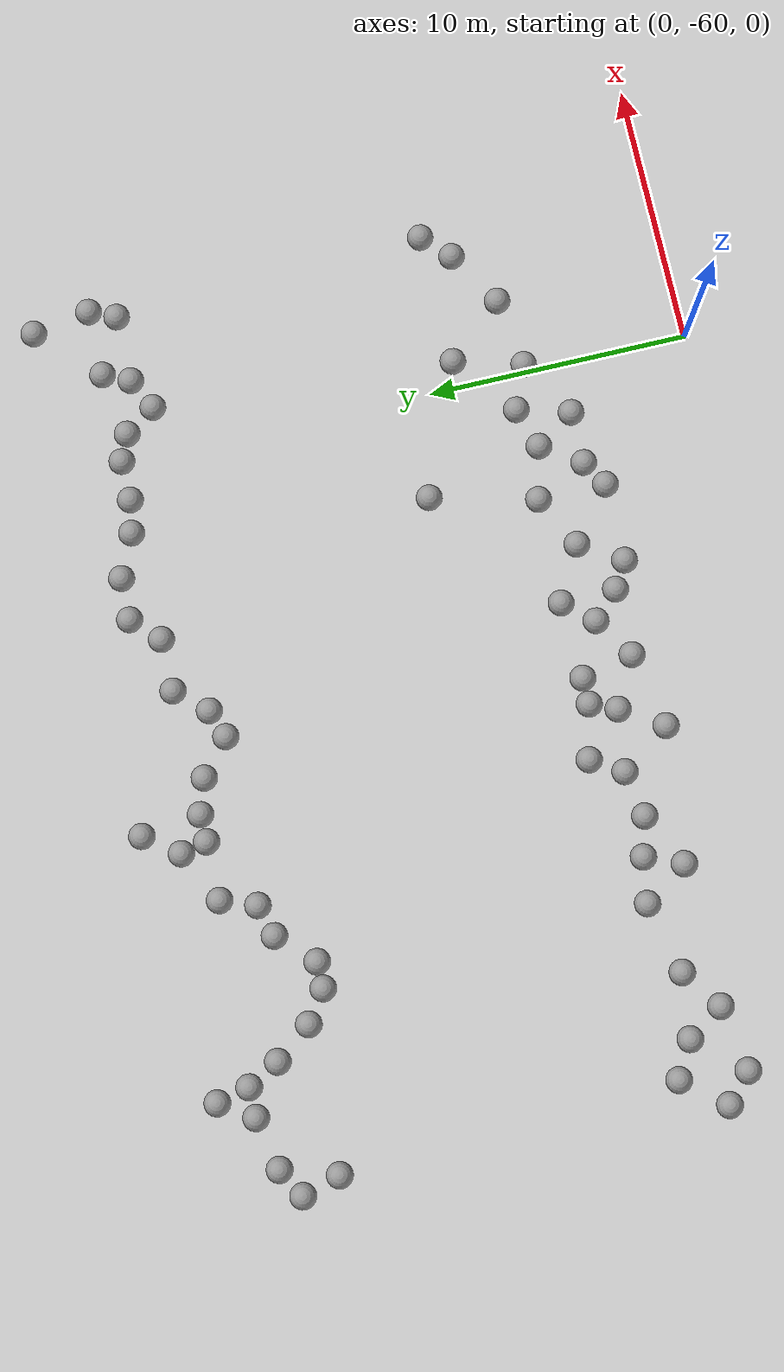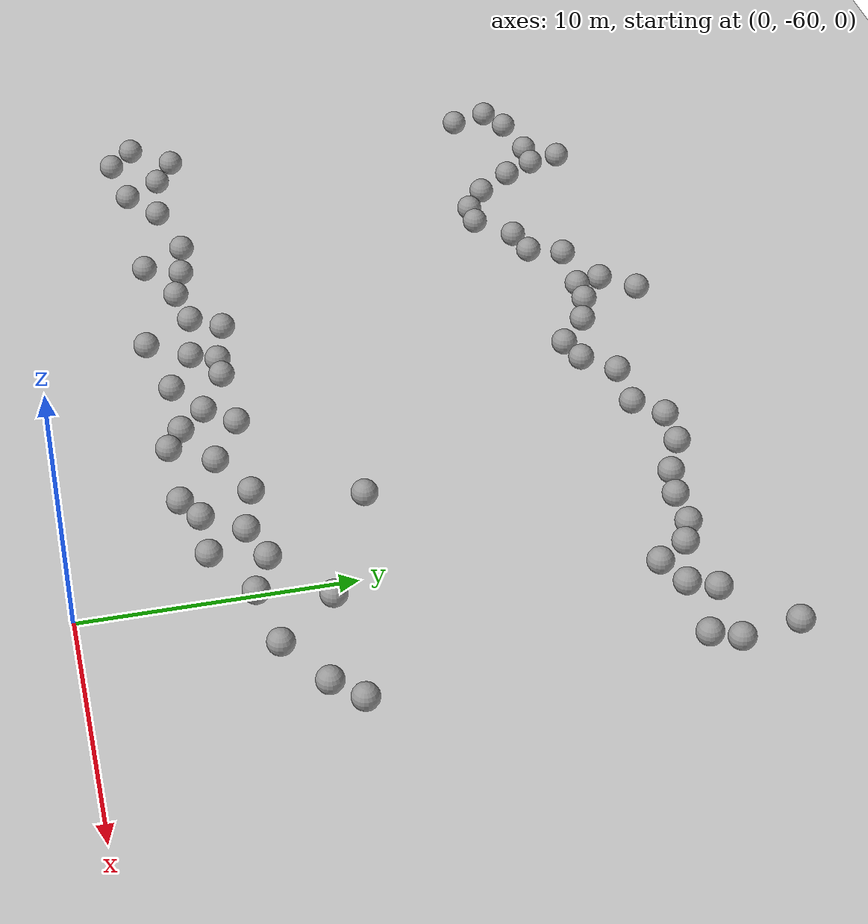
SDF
<sdf version="1.6">
 <world name="default">
  <model name="ground_plane">
   <static>1</static>
   <link name="link">
    <collision name="collision">
     <geometry><plane><normal>0 0 1</normal><size>100 100</size></plane></geometry>
     <surface><friction><ode><mu>100</mu><mu2>50</mu2></ode></friction></surface>
    </collision>
    <visual name="visual">
     <cast_shadows>0</cast_shadows>
     <geometry><plane><normal>0 0 1</normal><size>100 100</size></plane></geometry>
     <material>
      <script><uri>file://media/materials/scripts/gazebo.material</uri><name>Gazebo/Grey</name></script>
     </material>
    </visual>
   </link>
  </model>
  <model name="unit_sphere_0_clone_27">
   <pose>0.231399 -53.6899 0.5 0 -0 0</pose>
   <link name="link">
    <inertial>
     <mass>1</mass>
     <inertia><ixx>0.1</ixx><ixy>0</ixy><ixz>0</ixz><iyy>0.1</iyy><iyz>0</iyz><izz>0.1</izz></inertia>
    </inertial>
    <collision name="collision"><geometry><sphere><radius>0.5</radius></sphere></geometry></collision>
    <visual name="visual">
     <geometry><sphere><radius>0.5</radius></sphere></geometry>
     <material>
      <script><name>Gazebo/Grey</name><uri>file://media/materials/scripts/gazebo.material</uri></script>
     </material>
    </visual>
   </link>
  </model>
  <model name="unit_sphere_0_clone_28">
   <pose>-9.04954 -52.8887 0.5 0 -0 0</pose>
   <link name="link">
    <inertial>
     <mass>1</mass>
     <inertia><ixx>0.1</ixx><ixy>0</ixy><ixz>0</ixz><iyy>0.1</iyy><iyz>0</iyz><izz>0.1</izz></inertia>
    </inertial>
    <collision name="collision"><geometry><sphere><radius>0.5</radius></sphere></geometry></collision>
    <visual name="visual">
     <geometry><sphere><radius>0.5</radius></sphere></geometry>
     <material>
      <script><name>Gazebo/Grey</name><uri>file://media/materials/scripts/gazebo.material</uri></script>
     </material>
    </visual>
   </link>
  </model>
  <model name="unit_sphere_0_clone_29">
   <pose>-15.0281 -52.5018 0.5 0 -0 0</pose>
   <link name="link">
    <inertial>
     <mass>1</mass>
     <inertia><ixx>0.1</ixx><ixy>0</ixy><ixz>0</ixz><iyy>0.1</iyy><iyz>0</iyz><izz>0.1</izz></inertia>
    </inertial>
    <collision name="collision"><geometry><sphere><radius>0.5</radius></sphere></geometry></collision>
    <visual name="visual">
     <geometry><sphere><radius>0.5</radius></sphere></geometry>
     <material>
      <script><name>Gazebo/Grey</name><uri>file://media/materials/scripts/gazebo.material</uri></script>
     </material>
    </visual>
   </link>
  </model>
  <model name="unit_sphere_0_clone_30">
   <pose>-20.6916 -53.3218 0.5 0 -0 0</pose>
   <link name="link">
    <inertial>
     <mass>1</mass>
     <inertia><ixx>0.1</ixx><ixy>0</ixy><ixz>0</ixz><iyy>0.1</iyy><iyz>0</iyz><izz>0.1</izz></inertia>
    </inertial>
    <collision name="collision"><geometry><sphere><radius>0.5</radius></sphere></geometry></collision>
    <visual name="visual">
     <geometry><sphere><radius>0.5</radius></sphere></geometry>
     <material>
      <script><name>Gazebo/Grey</name><uri>file://media/materials/scripts/gazebo.material</uri></script>
     </material>
    </visual>
   </link>
  </model>
  <model name="unit_sphere_0_clone_31">
   <pose>-27.1746 -52.8869 0.5 0 -0 0</pose>
   <link name="link">
    <inertial>
     <mass>1</mass>
     <inertia><ixx>0.1</ixx><ixy>0</ixy><ixz>0</ixz><iyy>0.1</iyy><iyz>0</iyz><izz>0.1</izz></inertia>
    </inertial>
    <collision name="collision"><geometry><sphere><radius>0.5</radius></sphere></geometry></collision>
    <visual name="visual">
     <geometry><sphere><radius>0.5</radius></sphere></geometry>
     <material>
      <script><name>Gazebo/Grey</name><uri>file://media/materials/scripts/gazebo.material</uri></script>
     </material>
    </visual>
   </link>
  </model>
  <model name="unit_sphere_0_clone_56">
   <pose>1.79014 -39.5912 0.5 0 -0 0</pose>
   <link name="link">
    <inertial>
     <mass>1</mass>
     <inertia><ixx>0.1</ixx><ixy>0</ixy><ixz>0</ixz><iyy>0.1</iyy><iyz>0</iyz><izz>0.1</izz></inertia>
    </inertial>
    <collision name="collision"><geometry><sphere><radius>0.5</radius></sphere></geometry></collision>
    <visual name="visual">
     <geometry><sphere><radius>0.5</radius></sphere></geometry>
     <material>
      <script><name>Gazebo/Grey</name><uri>file://media/materials/scripts/gazebo.material</uri></script>
     </material>
    </visual>
   </link>
  </model>
  <model name="unit_sphere_0_clone_57">
   <pose>-11.1183 -39.5447 0.5 0 -0 0</pose>
   <link name="link">
    <inertial>
     <mass>1</mass>
     <inertia><ixx>0.1</ixx><ixy>0</ixy><ixz>0</ixz><iyy>0.1</iyy><iyz>0</iyz><izz>0.1</izz></inertia>
    </inertial>
    <collision name="collision"><geometry><sphere><radius>0.5</radius></sphere></geometry></collision>
    <visual name="visual">
     <geometry><sphere><radius>0.5</radius></sphere></geometry>
     <material>
      <script><name>Gazebo/Grey</name><uri>file://media/materials/scripts/gazebo.material</uri></script>
     </material>
    </visual>
   </link>
  </model>
  <model name="unit_sphere_0_clone_58">
   <pose>-27.6834 -40.082 0.5 0 -0 0</pose>
   <link name="link">
    <inertial>
     <mass>1</mass>
     <inertia><ixx>0.1</ixx><ixy>0</ixy><ixz>0</ixz><iyy>0.1</iyy><iyz>0</iyz><izz>0.1</izz></inertia>
    </inertial>
    <collision name="collision"><geometry><sphere><radius>0.5</radius></sphere></geometry></collision>
    <visual name="visual">
     <geometry><sphere><radius>0.5</radius></sphere></geometry>
     <material>
      <script><name>Gazebo/Grey</name><uri>file://media/materials/scripts/gazebo.material</uri></script>
     </material>
    </visual>
   </link>
  </model>
  <model name="unit_sphere_0_clone_74">
   <pose>-4.39592 -37.0393 0.5 0 -0 0</pose>
   <link name="link">
    <inertial>
     <mass>1</mass>
     <inertia><ixx>0.1</ixx><ixy>0</ixy><ixz>0</ixz><iyy>0.1</iyy><iyz>0</iyz><izz>0.1</izz></inertia>
    </inertial>
    <collision name="collision"><geometry><sphere><radius>0.5</radius></sphere></geometry></collision>
    <visual name="visual">
     <geometry><sphere><radius>0.5</radius></sphere></geometry>
     <material>
      <script><name>Gazebo/Grey</name><uri>file://media/materials/scripts/gazebo.material</uri></script>
     </material>
    </visual>
   </link>
  </model>
  <model name="unit_sphere_0_clone_75">
   <pose>5.6303 -35.7873 0.5 0 -0 0</pose>
   <link name="link">
    <inertial>
     <mass>1</mass>
     <inertia><ixx>0.1</ixx><ixy>0</ixy><ixz>0</ixz><iyy>0.1</iyy><iyz>0</iyz><izz>0.1</izz></inertia>
    </inertial>
    <collision name="collision"><geometry><sphere><radius>0.5</radius></sphere></geometry></collision>
    <visual name="visual">
     <geometry><sphere><radius>0.5</radius></sphere></geometry>
     <material>
      <script><name>Gazebo/Grey</name><uri>file://media/materials/scripts/gazebo.material</uri></script>
     </material>
    </visual>
   </link>
  </model>
  <model name="unit_sphere_0_clone_76">
   <pose>-14.0409 -35.7155 0.5 0 -0 0</pose>
   <link name="link">
    <inertial>
     <mass>1</mass>
     <inertia><ixx>0.1</ixx><ixy>0</ixy><ixz>0</ixz><iyy>0.1</iyy><iyz>0</iyz><izz>0.1</izz></inertia>
    </inertial>
    <collision name="collision"><geometry><sphere><radius>0.5</radius></sphere></geometry></collision>
    <visual name="visual">
     <geometry><sphere><radius>0.5</radius></sphere></geometry>
     <material>
      <script><name>Gazebo/Grey</name><uri>file://media/materials/scripts/gazebo.material</uri></script>
     </material>
    </visual>
   </link>
  </model>
  <model name="unit_sphere_0_clone_77">
   <pose>-21 -41 0.5 0 -0 0</pose>
   <link name="link">
    <inertial>
     <mass>1</mass>
     <inertia><ixx>0.1</ixx><ixy>0</ixy><ixz>0</ixz><iyy>0.1</iyy><iyz>0</iyz><izz>0.1</izz></inertia>
    </inertial>
    <collision name="collision"><geometry><sphere><radius>0.5</radius></sphere></geometry></collision>
    <visual name="visual">
     <geometry><sphere><radius>0.5</radius></sphere></geometry>
     <material>
      <script><name>Gazebo/Grey</name><uri>file://media/materials/scripts/gazebo.material</uri></script>
     </material>
    </visual>
   </link>
  </model>
  <model name="unit_sphere_0_clone_78">
   <pose>-24.1691 -36.3192 0.5 0 -0 0</pose>
   <link name="link">
    <inertial>
     <mass>1</mass>
     <inertia><ixx>0.1</ixx><ixy>0</ixy><ixz>0</ixz><iyy>0.1</iyy><iyz>0</iyz><izz>0.1</izz></inertia>
    </inertial>
    <collision name="collision"><geometry><sphere><radius>0.5</radius></sphere></geometry></collision>
    <visual name="visual">
     <geometry><sphere><radius>0.5</radius></sphere></geometry>
     <material>
      <script><name>Gazebo/Grey</name><uri>file://media/materials/scripts/gazebo.material</uri></script>
     </material>
    </visual>
   </link>
  </model>
  <model name="unit_sphere_0_clone_128">
   <pose>5 -52 0.5 0 -0 0</pose>
   <link name="link">
    <inertial>
     <mass>1</mass>
     <inertia><ixx>0.1</ixx><ixy>0</ixy><ixz>0</ixz><iyy>0.1</iyy><iyz>0</iyz><izz>0.1</izz></inertia>
    </inertial>
    <collision name="collision"><geometry><sphere><radius>0.5</radius></sphere></geometry></collision>
    <visual name="visual">
     <geometry><sphere><radius>0.5</radius></sphere></geometry>
     <material>
      <script><name>Gazebo/Grey</name><uri>file://media/materials/scripts/gazebo.material</uri></script>
     </material>
    </visual>
   </link>
  </model>
  <model name="unit_sphere_0_clone_129">
   <pose>-4 -49 0.5 0 -0 0</pose>
   <link name="link">
    <inertial>
     <mass>1</mass>
     <inertia><ixx>0.1</ixx><ixy>0</ixy><ixz>0</ixz><iyy>0.1</iyy><iyz>0</iyz><izz>0.1</izz></inertia>
    </inertial>
    <collision name="collision"><geometry><sphere><radius>0.5</radius></sphere></geometry></collision>
    <visual name="visual">
     <geometry><sphere><radius>0.5</radius></sphere></geometry>
     <material>
      <script><name>Gazebo/Grey</name><uri>file://media/materials/scripts/gazebo.material</uri></script>
     </material>
    </visual>
   </link>
  </model>
  <model name="unit_sphere_0_clone_130">
   <pose>-5 -55.5967 0.5 0 -0 0</pose>
   <link name="link">
    <inertial>
     <mass>1</mass>
     <inertia><ixx>0.1</ixx><ixy>0</ixy><ixz>0</ixz><iyy>0.1</iyy><iyz>0</iyz><izz>0.1</izz></inertia>
    </inertial>
    <collision name="collision"><geometry><sphere><radius>0.5</radius></sphere></geometry></collision>
    <visual name="visual">
     <geometry><sphere><radius>0.5</radius></sphere></geometry>
     <material>
      <script><name>Gazebo/Grey</name><uri>file://media/materials/scripts/gazebo.material</uri></script>
     </material>
    </visual>
   </link>
  </model>
  <model name="unit_sphere_0_clone_131">
   <pose>-14.4346 -55.5933 0.5 0 -0 0</pose>
   <link name="link">
    <inertial>
     <mass>1</mass>
     <inertia><ixx>0.1</ixx><ixy>0</ixy><ixz>0</ixz><iyy>0.1</iyy><iyz>0</iyz><izz>0.1</izz></inertia>
    </inertial>
    <collision name="collision"><geometry><sphere><radius>0.5</radius></sphere></geometry></collision>
    <visual name="visual">
     <geometry><sphere><radius>0.5</radius></sphere></geometry>
     <material>
      <script><name>Gazebo/Grey</name><uri>file://media/materials/scripts/gazebo.material</uri></script>
     </material>
    </visual>
   </link>
  </model>
  <model name="unit_sphere_0_clone_132">
   <pose>-19.5741 -55 0.5 0 -0 0</pose>
   <link name="link">
    <inertial>
     <mass>1</mass>
     <inertia><ixx>0.1</ixx><ixy>0</ixy><ixz>0</ixz><iyy>0.1</iyy><iyz>0</iyz><izz>0.1</izz></inertia>
    </inertial>
    <collision name="collision"><geometry><sphere><radius>0.5</radius></sphere></geometry></collision>
    <visual name="visual">
     <geometry><sphere><radius>0.5</radius></sphere></geometry>
     <material>
      <script><name>Gazebo/Grey</name><uri>file://media/materials/scripts/gazebo.material</uri></script>
     </material>
    </visual>
   </link>
  </model>
  <model name="unit_sphere_0_clone_133">
   <pose>-27.4134 -55.4237 0.5 0 -0 0</pose>
   <link name="link">
    <inertial>
     <mass>1</mass>
     <inertia><ixx>0.1</ixx><ixy>0</ixy><ixz>0</ixz><iyy>0.1</iyy><iyz>0</iyz><izz>0.1</izz></inertia>
    </inertial>
    <collision name="collision"><geometry><sphere><radius>0.5</radius></sphere></geometry></collision>
    <visual name="visual">
     <geometry><sphere><radius>0.5</radius></sphere></geometry>
     <material>
      <script><name>Gazebo/Grey</name><uri>file://media/materials/scripts/gazebo.material</uri></script>
     </material>
    </visual>
   </link>
  </model>
  <model name="unit_sphere_0_clone_145">
   <pose>0.957135 -51.0925 0.5 0 -0 0</pose>
   <link name="link">
    <inertial>
     <mass>1</mass>
     <inertia><ixx>0.1</ixx><ixy>0</ixy><ixz>0</ixz><iyy>0.1</iyy><iyz>0</iyz><izz>0.1</izz></inertia>
    </inertial>
    <collision name="collision"><geometry><sphere><radius>0.5</radius></sphere></geometry></collision>
    <visual name="visual">
     <geometry><sphere><radius>0.5</radius></sphere></geometry>
     <material>
      <script><name>Gazebo/Grey</name><uri>file://media/materials/scripts/gazebo.material</uri></script>
     </material>
    </visual>
   </link>
  </model>
  <model name="unit_sphere_1_clone_21">
   <pose>6 -38 0.5 0 -0 0</pose>
   <link name="link">
    <inertial>
     <mass>1</mass>
     <inertia><ixx>0.1</ixx><ixy>0</ixy><ixz>0</ixz><iyy>0.1</iyy><iyz>0</iyz><izz>0.1</izz></inertia>
    </inertial>
    <collision name="collision"><geometry><sphere><radius>0.5</radius></sphere></geometry></collision>
    <visual name="visual">
     <geometry><sphere><radius>0.5</radius></sphere></geometry>
     <material>
      <script><name>Gazebo/Grey</name><uri>file://media/materials/scripts/gazebo.material</uri></script>
     </material>
    </visual>
   </link>
  </model>
  <model name="unit_sphere_1_clone_22">
   <pose>5.56417 -39 0.5 0 -0 0</pose>
   <link name="link">
    <inertial>
     <mass>1</mass>
     <inertia><ixx>0.1</ixx><ixy>0</ixy><ixz>0</ixz><iyy>0.1</iyy><iyz>0</iyz><izz>0.1</izz></inertia>
    </inertial>
    <collision name="collision"><geometry><sphere><radius>0.5</radius></sphere></geometry></collision>
    <visual name="visual">
     <geometry><sphere><radius>0.5</radius></sphere></geometry>
     <material>
      <script><name>Gazebo/Grey</name><uri>file://media/materials/scripts/gazebo.material</uri></script>
     </material>
    </visual>
   </link>
  </model>
  <model name="unit_sphere_1_clone_23">
   <pose>3 -39 0.5 0 -0 0</pose>
   <link name="link">
    <inertial>
     <mass>1</mass>
     <inertia><ixx>0.1</ixx><ixy>0</ixy><ixz>0</ixz><iyy>0.1</iyy><iyz>0</iyz><izz>0.1</izz></inertia>
    </inertial>
    <collision name="collision"><geometry><sphere><radius>0.5</radius></sphere></geometry></collision>
    <visual name="visual">
     <geometry><sphere><radius>0.5</radius></sphere></geometry>
     <material>
      <script><name>Gazebo/Grey</name><uri>file://media/materials/scripts/gazebo.material</uri></script>
     </material>
    </visual>
   </link>
  </model>
  <model name="unit_sphere_1_clone_24">
   <pose>1 -38.4231 0.5 0 -0 0</pose>
   <link name="link">
    <inertial>
     <mass>1</mass>
     <inertia><ixx>0.1</ixx><ixy>0</ixy><ixz>0</ixz><iyy>0.1</iyy><iyz>0</iyz><izz>0.1</izz></inertia>
    </inertial>
    <collision name="collision"><geometry><sphere><radius>0.5</radius></sphere></geometry></collision>
    <visual name="visual">
     <geometry><sphere><radius>0.5</radius></sphere></geometry>
     <material>
      <script><name>Gazebo/Grey</name><uri>file://media/materials/scripts/gazebo.material</uri></script>
     </material>
    </visual>
   </link>
  </model>
  <model name="unit_sphere_1_clone_25">
   <pose>3.46403 -38 0.5 0 -0 0</pose>
   <link name="link">
    <inertial>
     <mass>1</mass>
     <inertia><ixx>0.1</ixx><ixy>0</ixy><ixz>0</ixz><iyy>0.1</iyy><iyz>0</iyz><izz>0.1</izz></inertia>
    </inertial>
    <collision name="collision"><geometry><sphere><radius>0.5</radius></sphere></geometry></collision>
    <visual name="visual">
     <geometry><sphere><radius>0.5</radius></sphere></geometry>
     <material>
      <script><name>Gazebo/Grey</name><uri>file://media/materials/scripts/gazebo.material</uri></script>
     </material>
    </visual>
   </link>
  </model>
  <model name="unit_sphere_1_clone_26">
   <pose>0 -38 0.5 0 -0 0</pose>
   <link name="link">
    <inertial>
     <mass>1</mass>
     <inertia><ixx>0.1</ixx><ixy>0</ixy><ixz>0</ixz><iyy>0.1</iyy><iyz>0</iyz><izz>0.1</izz></inertia>
    </inertial>
    <collision name="collision"><geometry><sphere><radius>0.5</radius></sphere></geometry></collision>
    <visual name="visual">
     <geometry><sphere><radius>0.5</radius></sphere></geometry>
     <material>
      <script><name>Gazebo/Grey</name><uri>file://media/materials/scripts/gazebo.material</uri></script>
     </material>
    </visual>
   </link>
  </model>
  <model name="unit_sphere_1_clone_27">
   <pose>-2.78454 -37.7752 0.5 0 -0 0</pose>
   <link name="link">
    <inertial>
     <mass>1</mass>
     <inertia><ixx>0.1</ixx><ixy>0</ixy><ixz>0</ixz><iyy>0.1</iyy><iyz>0</iyz><izz>0.1</izz></inertia>
    </inertial>
    <collision name="collision"><geometry><sphere><radius>0.5</radius></sphere></geometry></collision>
    <visual name="visual">
     <geometry><sphere><radius>0.5</radius></sphere></geometry>
     <material>
      <script><name>Gazebo/Grey</name><uri>file://media/materials/scripts/gazebo.material</uri></script>
     </material>
    </visual>
   </link>
  </model>
  <model name="unit_sphere_1_clone_28">
   <pose>-1.52495 -38 0.5 0 -0 0</pose>
   <link name="link">
    <inertial>
     <mass>1</mass>
     <inertia><ixx>0.1</ixx><ixy>0</ixy><ixz>0</ixz><iyy>0.1</iyy><iyz>0</iyz><izz>0.1</izz></inertia>
    </inertial>
    <collision name="collision"><geometry><sphere><radius>0.5</radius></sphere></geometry></collision>
    <visual name="visual">
     <geometry><sphere><radius>0.5</radius></sphere></geometry>
     <material>
      <script><name>Gazebo/Grey</name><uri>file://media/materials/scripts/gazebo.material</uri></script>
     </material>
    </visual>
   </link>
  </model>
  <model name="unit_sphere_1_clone_29">
   <pose>-6 -37 0.5 0 -0 0</pose>
   <link name="link">
    <inertial>
     <mass>1</mass>
     <inertia><ixx>0.1</ixx><ixy>0</ixy><ixz>0</ixz><iyy>0.1</iyy><iyz>0</iyz><izz>0.1</izz></inertia>
    </inertial>
    <collision name="collision"><geometry><sphere><radius>0.5</radius></sphere></geometry></collision>
    <visual name="visual">
     <geometry><sphere><radius>0.5</radius></sphere></geometry>
     <material>
      <script><name>Gazebo/Grey</name><uri>file://media/materials/scripts/gazebo.material</uri></script>
     </material>
    </visual>
   </link>
  </model>
  <model name="unit_sphere_1_clone_30">
   <pose>-7 -38 0.5 0 -0 0</pose>
   <link name="link">
    <inertial>
     <mass>1</mass>
     <inertia><ixx>0.1</ixx><ixy>0</ixy><ixz>0</ixz><iyy>0.1</iyy><iyz>0</iyz><izz>0.1</izz></inertia>
    </inertial>
    <collision name="collision"><geometry><sphere><radius>0.5</radius></sphere></geometry></collision>
    <visual name="visual">
     <geometry><sphere><radius>0.5</radius></sphere></geometry>
     <material>
      <script><name>Gazebo/Grey</name><uri>file://media/materials/scripts/gazebo.material</uri></script>
     </material>
    </visual>
   </link>
  </model>
  <model name="unit_sphere_1_clone_31">
   <pose>-9 -38 0.5 0 -0 0</pose>
   <link name="link">
    <inertial>
     <mass>1</mass>
     <inertia><ixx>0.1</ixx><ixy>0</ixy><ixz>0</ixz><iyy>0.1</iyy><iyz>0</iyz><izz>0.1</izz></inertia>
    </inertial>
    <collision name="collision"><geometry><sphere><radius>0.5</radius></sphere></geometry></collision>
    <visual name="visual">
     <geometry><sphere><radius>0.5</radius></sphere></geometry>
     <material>
      <script><name>Gazebo/Grey</name><uri>file://media/materials/scripts/gazebo.material</uri></script>
     </material>
    </visual>
   </link>
  </model>
  <model name="unit_sphere_1_clone_32">
   <pose>-10.0346 -39.1596 0.5 0 -0 0</pose>
   <link name="link">
    <inertial>
     <mass>1</mass>
     <inertia><ixx>0.1</ixx><ixy>0</ixy><ixz>0</ixz><iyy>0.1</iyy><iyz>0</iyz><izz>0.1</izz></inertia>
    </inertial>
    <collision name="collision"><geometry><sphere><radius>0.5</radius></sphere></geometry></collision>
    <visual name="visual">
     <geometry><sphere><radius>0.5</radius></sphere></geometry>
     <material>
      <script><name>Gazebo/Grey</name><uri>file://media/materials/scripts/gazebo.material</uri></script>
     </material>
    </visual>
   </link>
  </model>
  <model name="unit_sphere_1_clone_33">
   <pose>-12.4488 -38.4317 0.5 0 -0 0</pose>
   <link name="link">
    <inertial>
     <mass>1</mass>
     <inertia><ixx>0.1</ixx><ixy>0</ixy><ixz>0</ixz><iyy>0.1</iyy><iyz>0</iyz><izz>0.1</izz></inertia>
    </inertial>
    <collision name="collision"><geometry><sphere><radius>0.5</radius></sphere></geometry></collision>
    <visual name="visual">
     <geometry><sphere><radius>0.5</radius></sphere></geometry>
     <material>
      <script><name>Gazebo/Grey</name><uri>file://media/materials/scripts/gazebo.material</uri></script>
     </material>
    </visual>
   </link>
  </model>
  <model name="unit_sphere_1_clone_34">
   <pose>-13.7459 -38 0.5 0 0.036299 0</pose>
   <link name="link">
    <inertial>
     <mass>1</mass>
     <inertia><ixx>0.1</ixx><ixy>0</ixy><ixz>0</ixz><iyy>0.1</iyy><iyz>0</iyz><izz>0.1</izz></inertia>
    </inertial>
    <collision name="collision"><geometry><sphere><radius>0.5</radius></sphere></geometry></collision>
    <visual name="visual">
     <geometry><sphere><radius>0.5</radius></sphere></geometry>
     <material>
      <script><name>Gazebo/Grey</name><uri>file://media/materials/scripts/gazebo.material</uri></script>
     </material>
    </visual>
   </link>
  </model>
  <model name="unit_sphere_1_clone_35">
   <pose>-14.782 -38 0.5 0 -0.036119 0</pose>
   <link name="link">
    <inertial>
     <mass>1</mass>
     <inertia><ixx>0.1</ixx><ixy>0</ixy><ixz>0</ixz><iyy>0.1</iyy><iyz>0</iyz><izz>0.1</izz></inertia>
    </inertial>
    <collision name="collision"><geometry><sphere><radius>0.5</radius></sphere></geometry></collision>
    <visual name="visual">
     <geometry><sphere><radius>0.5</radius></sphere></geometry>
     <material>
      <script><name>Gazebo/Grey</name><uri>file://media/materials/scripts/gazebo.material</uri></script>
     </material>
    </visual>
   </link>
  </model>
  <model name="unit_sphere_1_clone_36">
   <pose>-15 -37 0.5 0 -0 0</pose>
   <link name="link">
    <inertial>
     <mass>1</mass>
     <inertia><ixx>0.1</ixx><ixy>0</ixy><ixz>0</ixz><iyy>0.1</iyy><iyz>0</iyz><izz>0.1</izz></inertia>
    </inertial>
    <collision name="collision"><geometry><sphere><radius>0.5</radius></sphere></geometry></collision>
    <visual name="visual">
     <geometry><sphere><radius>0.5</radius></sphere></geometry>
     <material>
      <script><name>Gazebo/Grey</name><uri>file://media/materials/scripts/gazebo.material</uri></script>
     </material>
    </visual>
   </link>
  </model>
  <model name="unit_sphere_1_clone_37">
   <pose>-17 -38 0.5 0 -0 0</pose>
   <link name="link">
    <inertial>
     <mass>1</mass>
     <inertia><ixx>0.1</ixx><ixy>0</ixy><ixz>0</ixz><iyy>0.1</iyy><iyz>0</iyz><izz>0.1</izz></inertia>
    </inertial>
    <collision name="collision"><geometry><sphere><radius>0.5</radius></sphere></geometry></collision>
    <visual name="visual">
     <geometry><sphere><radius>0.5</radius></sphere></geometry>
     <material>
      <script><name>Gazebo/Grey</name><uri>file://media/materials/scripts/gazebo.material</uri></script>
     </material>
    </visual>
   </link>
  </model>
  <model name="unit_sphere_1_clone_38">
   <pose>-18.7256 -39.6777 0.5 0 -0 0</pose>
   <link name="link">
    <inertial>
     <mass>1</mass>
     <inertia><ixx>0.1</ixx><ixy>0</ixy><ixz>0</ixz><iyy>0.1</iyy><iyz>0</iyz><izz>0.1</izz></inertia>
    </inertial>
    <collision name="collision"><geometry><sphere><radius>0.5</radius></sphere></geometry></collision>
    <visual name="visual">
     <geometry><sphere><radius>0.5</radius></sphere></geometry>
     <material>
      <script><name>Gazebo/Grey</name><uri>file://media/materials/scripts/gazebo.material</uri></script>
     </material>
    </visual>
   </link>
  </model>
  <model name="unit_sphere_1_clone_39">
   <pose>-17.5 -39.3317 0.5 0 -0 0</pose>
   <link name="link">
    <inertial>
     <mass>1</mass>
     <inertia><ixx>0.1</ixx><ixy>0</ixy><ixz>0</ixz><iyy>0.1</iyy><iyz>0</iyz><izz>0.1</izz></inertia>
    </inertial>
    <collision name="collision"><geometry><sphere><radius>0.5</radius></sphere></geometry></collision>
    <visual name="visual">
     <geometry><sphere><radius>0.5</radius></sphere></geometry>
     <material>
      <script><name>Gazebo/Grey</name><uri>file://media/materials/scripts/gazebo.material</uri></script>
     </material>
    </visual>
   </link>
  </model>
  <model name="unit_sphere_1_clone_40">
   <pose>-20 -41 0.5 0 -0 0</pose>
   <link name="link">
    <inertial>
     <mass>1</mass>
     <inertia><ixx>0.1</ixx><ixy>0</ixy><ixz>0</ixz><iyy>0.1</iyy><iyz>0</iyz><izz>0.1</izz></inertia>
    </inertial>
    <collision name="collision"><geometry><sphere><radius>0.5</radius></sphere></geometry></collision>
    <visual name="visual">
     <geometry><sphere><radius>0.5</radius></sphere></geometry>
     <material>
      <script><name>Gazebo/Grey</name><uri>file://media/materials/scripts/gazebo.material</uri></script>
     </material>
    </visual>
   </link>
  </model>
  <model name="unit_sphere_1_clone_41">
   <pose>-22.1495 -40.1932 0.5 0 -0 0</pose>
   <link name="link">
    <inertial>
     <mass>1</mass>
     <inertia><ixx>0.1</ixx><ixy>0</ixy><ixz>0</ixz><iyy>0.1</iyy><iyz>0</iyz><izz>0.1</izz></inertia>
    </inertial>
    <collision name="collision"><geometry><sphere><radius>0.5</radius></sphere></geometry></collision>
    <visual name="visual">
     <geometry><sphere><radius>0.5</radius></sphere></geometry>
     <material>
      <script><name>Gazebo/Grey</name><uri>file://media/materials/scripts/gazebo.material</uri></script>
     </material>
    </visual>
   </link>
  </model>
  <model name="unit_sphere_1_clone_42">
   <pose>-23.2102 -38.7907 0.5 0 -0 0</pose>
   <link name="link">
    <inertial>
     <mass>1</mass>
     <inertia><ixx>0.1</ixx><ixy>0</ixy><ixz>0</ixz><iyy>0.1</iyy><iyz>0</iyz><izz>0.1</izz></inertia>
    </inertial>
    <collision name="collision"><geometry><sphere><radius>0.5</radius></sphere></geometry></collision>
    <visual name="visual">
     <geometry><sphere><radius>0.5</radius></sphere></geometry>
     <material>
      <script><name>Gazebo/Grey</name><uri>file://media/materials/scripts/gazebo.material</uri></script>
     </material>
    </visual>
   </link>
  </model>
  <model name="unit_sphere_1_clone_43">
   <pose>-23.8731 -37.574 0.5 0 -0 0</pose>
   <link name="link">
    <inertial>
     <mass>1</mass>
     <inertia><ixx>0.1</ixx><ixy>0</ixy><ixz>0</ixz><iyy>0.1</iyy><iyz>0</iyz><izz>0.1</izz></inertia>
    </inertial>
    <collision name="collision"><geometry><sphere><radius>0.5</radius></sphere></geometry></collision>
    <visual name="visual">
     <geometry><sphere><radius>0.5</radius></sphere></geometry>
     <material>
      <script><name>Gazebo/Grey</name><uri>file://media/materials/scripts/gazebo.material</uri></script>
     </material>
    </visual>
   </link>
  </model>
  <model name="unit_sphere_1_clone_44">
   <pose>-25 -37.5795 0.5 0 -0 0</pose>
   <link name="link">
    <inertial>
     <mass>1</mass>
     <inertia><ixx>0.1</ixx><ixy>0</ixy><ixz>0</ixz><iyy>0.1</iyy><iyz>0</iyz><izz>0.1</izz></inertia>
    </inertial>
    <collision name="collision"><geometry><sphere><radius>0.5</radius></sphere></geometry></collision>
    <visual name="visual">
     <geometry><sphere><radius>0.5</radius></sphere></geometry>
     <material>
      <script><name>Gazebo/Grey</name><uri>file://media/materials/scripts/gazebo.material</uri></script>
     </material>
    </visual>
   </link>
  </model>
  <model name="unit_sphere_1_clone_45">
   <pose>-27 -38 0.5 0 -0 0</pose>
   <link name="link">
    <inertial>
     <mass>1</mass>
     <inertia><ixx>0.1</ixx><ixy>0</ixy><ixz>0</ixz><iyy>0.1</iyy><iyz>0</iyz><izz>0.1</izz></inertia>
    </inertial>
    <collision name="collision"><geometry><sphere><radius>0.5</radius></sphere></geometry></collision>
    <visual name="visual">
     <geometry><sphere><radius>0.5</radius></sphere></geometry>
     <material>
      <script><name>Gazebo/Grey</name><uri>file://media/materials/scripts/gazebo.material</uri></script>
     </material>
    </visual>
   </link>
  </model>
  <model name="unit_sphere_1_clone_46">
   <pose>-28.1075 -38.6258 0.5 0 -0 0</pose>
   <link name="link">
    <inertial>
     <mass>1</mass>
     <inertia><ixx>0.1</ixx><ixy>0</ixy><ixz>0</ixz><iyy>0.1</iyy><iyz>0</iyz><izz>0.1</izz></inertia>
    </inertial>
    <collision name="collision"><geometry><sphere><radius>0.5</radius></sphere></geometry></collision>
    <visual name="visual">
     <geometry><sphere><radius>0.5</radius></sphere></geometry>
     <material>
      <script><name>Gazebo/Grey</name><uri>file://media/materials/scripts/gazebo.material</uri></script>
     </material>
    </visual>
   </link>
  </model>
  <model name="unit_sphere_1_clone_231">
   <pose>-25.8369 -53.647 0.5 0 -0 0</pose>
   <link name="link">
    <inertial>
     <mass>1</mass>
     <inertia><ixx>0.1</ixx><ixy>0</ixy><ixz>0</ixz><iyy>0.1</iyy><iyz>0</iyz><izz>0.1</izz></inertia>
    </inertial>
    <collision name="collision"><geometry><sphere><radius>0.5</radius></sphere></geometry></collision>
    <visual name="visual">
     <geometry><sphere><radius>0.5</radius></sphere></geometry>
     <material>
      <script><name>Gazebo/Grey</name><uri>file://media/materials/scripts/gazebo.material</uri></script>
     </material>
    </visual>
   </link>
  </model>
  <model name="unit_sphere_1_clone_232">
   <pose>-28.4637 -54.4649 0.5 0 -0 0</pose>
   <link name="link">
    <inertial>
     <mass>1</mass>
     <inertia><ixx>0.1</ixx><ixy>0</ixy><ixz>0</ixz><iyy>0.1</iyy><iyz>0</iyz><izz>0.1</izz></inertia>
    </inertial>
    <collision name="collision"><geometry><sphere><radius>0.5</radius></sphere></geometry></collision>
    <visual name="visual">
     <geometry><sphere><radius>0.5</radius></sphere></geometry>
     <material>
      <script><name>Gazebo/Grey</name><uri>file://media/materials/scripts/gazebo.material</uri></script>
     </material>
    </visual>
   </link>
  </model>
  <model name="unit_sphere_1_clone_233">
   <pose>-24.93 -55.0235 0.5 0 -0 0</pose>
   <link name="link">
    <inertial>
     <mass>1</mass>
     <inertia><ixx>0.1</ixx><ixy>0</ixy><ixz>0</ixz><iyy>0.1</iyy><iyz>0</iyz><izz>0.1</izz></inertia>
    </inertial>
    <collision name="collision"><geometry><sphere><radius>0.5</radius></sphere></geometry></collision>
    <visual name="visual">
     <geometry><sphere><radius>0.5</radius></sphere></geometry>
     <material>
      <script><name>Gazebo/Grey</name><uri>file://media/materials/scripts/gazebo.material</uri></script>
     </material>
    </visual>
   </link>
  </model>
  <model name="unit_sphere_1_clone_234">
   <pose>-23.419 -53.949 0.5 0 -0 0</pose>
   <link name="link">
    <inertial>
     <mass>1</mass>
     <inertia><ixx>0.1</ixx><ixy>0</ixy><ixz>0</ixz><iyy>0.1</iyy><iyz>0</iyz><izz>0.1</izz></inertia>
    </inertial>
    <collision name="collision"><geometry><sphere><radius>0.5</radius></sphere></geometry></collision>
    <visual name="visual">
     <geometry><sphere><radius>0.5</radius></sphere></geometry>
     <material>
      <script><name>Gazebo/Grey</name><uri>file://media/materials/scripts/gazebo.material</uri></script>
     </material>
    </visual>
   </link>
  </model>
  <model name="unit_sphere_1_clone_235">
   <pose>-18.9876 -53.5888 0.5 0 -0 0</pose>
   <link name="link">
    <inertial>
     <mass>1</mass>
     <inertia><ixx>0.1</ixx><ixy>0</ixy><ixz>0</ixz><iyy>0.1</iyy><iyz>0</iyz><izz>0.1</izz></inertia>
    </inertial>
    <collision name="collision"><geometry><sphere><radius>0.5</radius></sphere></geometry></collision>
    <visual name="visual">
     <geometry><sphere><radius>0.5</radius></sphere></geometry>
     <material>
      <script><name>Gazebo/Grey</name><uri>file://media/materials/scripts/gazebo.material</uri></script>
     </material>
    </visual>
   </link>
  </model>
  <model name="unit_sphere_1_clone_236">
   <pose>-17.5298 -54 0.5 0 -0 0</pose>
   <link name="link">
    <inertial>
     <mass>1</mass>
     <inertia><ixx>0.1</ixx><ixy>0</ixy><ixz>0</ixz><iyy>0.1</iyy><iyz>0</iyz><izz>0.1</izz></inertia>
    </inertial>
    <collision name="collision"><geometry><sphere><radius>0.5</radius></sphere></geometry></collision>
    <visual name="visual">
     <geometry><sphere><radius>0.5</radius></sphere></geometry>
     <material>
      <script><name>Gazebo/Grey</name><uri>file://media/materials/scripts/gazebo.material</uri></script>
     </material>
    </visual>
   </link>
  </model>
  <model name="unit_sphere_1_clone_237">
   <pose>-15.7616 -53.6875 0.5 0 -0 0</pose>
   <link name="link">
    <inertial>
     <mass>1</mass>
     <inertia><ixx>0.1</ixx><ixy>0</ixy><ixz>0</ixz><iyy>0.1</iyy><iyz>0</iyz><izz>0.1</izz></inertia>
    </inertial>
    <collision name="collision"><geometry><sphere><radius>0.5</radius></sphere></geometry></collision>
    <visual name="visual">
     <geometry><sphere><radius>0.5</radius></sphere></geometry>
     <material>
      <script><name>Gazebo/Grey</name><uri>file://media/materials/scripts/gazebo.material</uri></script>
     </material>
    </visual>
   </link>
  </model>
  <model name="unit_sphere_1_clone_238">
   <pose>-13.4303 -54 0.5 0 -0 0</pose>
   <link name="link">
    <inertial>
     <mass>1</mass>
     <inertia><ixx>0.1</ixx><ixy>0</ixy><ixz>0</ixz><iyy>0.1</iyy><iyz>0</iyz><izz>0.1</izz></inertia>
    </inertial>
    <collision name="collision"><geometry><sphere><radius>0.5</radius></sphere></geometry></collision>
    <visual name="visual">
     <geometry><sphere><radius>0.5</radius></sphere></geometry>
     <material>
      <script><name>Gazebo/Grey</name><uri>file://media/materials/scripts/gazebo.material</uri></script>
     </material>
    </visual>
   </link>
  </model>
  <model name="unit_sphere_1_clone_239">
   <pose>-13 -53 0.5 0 -0 0</pose>
   <link name="link">
    <inertial>
     <mass>1</mass>
     <inertia><ixx>0.1</ixx><ixy>0</ixy><ixz>0</ixz><iyy>0.1</iyy><iyz>0</iyz><izz>0.1</izz></inertia>
    </inertial>
    <collision name="collision"><geometry><sphere><radius>0.5</radius></sphere></geometry></collision>
    <visual name="visual">
     <geometry><sphere><radius>0.5</radius></sphere></geometry>
     <material>
      <script><name>Gazebo/Grey</name><uri>file://media/materials/scripts/gazebo.material</uri></script>
     </material>
    </visual>
   </link>
  </model>
  <model name="unit_sphere_1_clone_240">
   <pose>-12 -53 0.5 0 -0 0</pose>
   <link name="link">
    <inertial>
     <mass>1</mass>
     <inertia><ixx>0.1</ixx><ixy>0</ixy><ixz>0</ixz><iyy>0.1</iyy><iyz>0</iyz><izz>0.1</izz></inertia>
    </inertial>
    <collision name="collision"><geometry><sphere><radius>0.5</radius></sphere></geometry></collision>
    <visual name="visual">
     <geometry><sphere><radius>0.5</radius></sphere></geometry>
     <material>
      <script><name>Gazebo/Grey</name><uri>file://media/materials/scripts/gazebo.material</uri></script>
     </material>
    </visual>
   </link>
  </model>
  <model name="unit_sphere_1_clone_241">
   <pose>-11.5529 -55 0.5 0 -0 0</pose>
   <link name="link">
    <inertial>
     <mass>1</mass>
     <inertia><ixx>0.1</ixx><ixy>0</ixy><ixz>0</ixz><iyy>0.1</iyy><iyz>0</iyz><izz>0.1</izz></inertia>
    </inertial>
    <collision name="collision"><geometry><sphere><radius>0.5</radius></sphere></geometry></collision>
    <visual name="visual">
     <geometry><sphere><radius>0.5</radius></sphere></geometry>
     <material>
      <script><name>Gazebo/Grey</name><uri>file://media/materials/scripts/gazebo.material</uri></script>
     </material>
    </visual>
   </link>
  </model>
  <model name="unit_sphere_1_clone_242">
   <pose>-10 -54 0.5 0 -0 0</pose>
   <link name="link">
    <inertial>
     <mass>1</mass>
     <inertia><ixx>0.1</ixx><ixy>0</ixy><ixz>0</ixz><iyy>0.1</iyy><iyz>0</iyz><izz>0.1</izz></inertia>
    </inertial>
    <collision name="collision"><geometry><sphere><radius>0.5</radius></sphere></geometry></collision>
    <visual name="visual">
     <geometry><sphere><radius>0.5</radius></sphere></geometry>
     <material>
      <script><name>Gazebo/Grey</name><uri>file://media/materials/scripts/gazebo.material</uri></script>
     </material>
    </visual>
   </link>
  </model>
  <model name="unit_sphere_1_clone_243">
   <pose>-9 -55 0.5 0 -0 0</pose>
   <link name="link">
    <inertial>
     <mass>1</mass>
     <inertia><ixx>0.1</ixx><ixy>0</ixy><ixz>0</ixz><iyy>0.1</iyy><iyz>0</iyz><izz>0.1</izz></inertia>
    </inertial>
    <collision name="collision"><geometry><sphere><radius>0.5</radius></sphere></geometry></collision>
    <visual name="visual">
     <geometry><sphere><radius>0.5</radius></sphere></geometry>
     <material>
      <script><name>Gazebo/Grey</name><uri>file://media/materials/scripts/gazebo.material</uri></script>
     </material>
    </visual>
   </link>
  </model>
  <model name="unit_sphere_1_clone_244">
   <pose>-7 -54 0.5 0 -0 0</pose>
   <link name="link">
    <inertial>
     <mass>1</mass>
     <inertia><ixx>0.1</ixx><ixy>0</ixy><ixz>0</ixz><iyy>0.1</iyy><iyz>0</iyz><izz>0.1</izz></inertia>
    </inertial>
    <collision name="collision"><geometry><sphere><radius>0.5</radius></sphere></geometry></collision>
    <visual name="visual">
     <geometry><sphere><radius>0.5</radius></sphere></geometry>
     <material>
      <script><name>Gazebo/Grey</name><uri>file://media/materials/scripts/gazebo.material</uri></script>
     </material>
    </visual>
   </link>
  </model>
  <model name="unit_sphere_1_clone_245">
   <pose>-5 -53 0.5 0 -0 0</pose>
   <link name="link">
    <inertial>
     <mass>1</mass>
     <inertia><ixx>0.1</ixx><ixy>0</ixy><ixz>0</ixz><iyy>0.1</iyy><iyz>0</iyz><izz>0.1</izz></inertia>
    </inertial>
    <collision name="collision"><geometry><sphere><radius>0.5</radius></sphere></geometry></collision>
    <visual name="visual">
     <geometry><sphere><radius>0.5</radius></sphere></geometry>
     <material>
      <script><name>Gazebo/Grey</name><uri>file://media/materials/scripts/gazebo.material</uri></script>
     </material>
    </visual>
   </link>
  </model>
  <model name="unit_sphere_1_clone_246">
   <pose>-8 -55.5989 0.5 0 -0 0</pose>
   <link name="link">
    <inertial>
     <mass>1</mass>
     <inertia><ixx>0.1</ixx><ixy>0</ixy><ixz>0</ixz><iyy>0.1</iyy><iyz>0</iyz><izz>0.1</izz></inertia>
    </inertial>
    <collision name="collision"><geometry><sphere><radius>0.5</radius></sphere></geometry></collision>
    <visual name="visual">
     <geometry><sphere><radius>0.5</radius></sphere></geometry>
     <material>
      <script><name>Gazebo/Grey</name><uri>file://media/materials/scripts/gazebo.material</uri></script>
     </material>
    </visual>
   </link>
  </model>
  <model name="unit_sphere_1_clone_247">
   <pose>-4 -55 0.5 0 -0 0</pose>
   <link name="link">
    <inertial>
     <mass>1</mass>
     <inertia><ixx>0.1</ixx><ixy>0</ixy><ixz>0</ixz><iyy>0.1</iyy><iyz>0</iyz><izz>0.1</izz></inertia>
    </inertial>
    <collision name="collision"><geometry><sphere><radius>0.5</radius></sphere></geometry></collision>
    <visual name="visual">
     <geometry><sphere><radius>0.5</radius></sphere></geometry>
     <material>
      <script><name>Gazebo/Grey</name><uri>file://media/materials/scripts/gazebo.material</uri></script>
     </material>
    </visual>
   </link>
  </model>
  <model name="unit_sphere_1_clone_248">
   <pose>-1.429 -53 0.5 0 -0 0</pose>
   <link name="link">
    <inertial>
     <mass>1</mass>
     <inertia><ixx>0.1</ixx><ixy>0</ixy><ixz>0</ixz><iyy>0.1</iyy><iyz>0</iyz><izz>0.1</izz></inertia>
    </inertial>
    <collision name="collision"><geometry><sphere><radius>0.5</radius></sphere></geometry></collision>
    <visual name="visual">
     <geometry><sphere><radius>0.5</radius></sphere></geometry>
     <material>
      <script><name>Gazebo/Grey</name><uri>file://media/materials/scripts/gazebo.material</uri></script>
     </material>
    </visual>
   </link>
  </model>
  <model name="unit_sphere_1_clone_249">
   <pose>-2 -55 0.5 0 -0 0</pose>
   <link name="link">
    <inertial>
     <mass>1</mass>
     <inertia><ixx>0.1</ixx><ixy>0</ixy><ixz>0</ixz><iyy>0.1</iyy><iyz>0</iyz><izz>0.1</izz></inertia>
    </inertial>
    <collision name="collision"><geometry><sphere><radius>0.5</radius></sphere></geometry></collision>
    <visual name="visual">
     <geometry><sphere><radius>0.5</radius></sphere></geometry>
     <material>
      <script><name>Gazebo/Grey</name><uri>file://media/materials/scripts/gazebo.material</uri></script>
     </material>
    </visual>
   </link>
  </model>
  <model name="unit_sphere_1_clone_250">
   <pose>-3 -53.5026 0.5 0 -0 0</pose>
   <link name="link">
    <inertial>
     <mass>1</mass>
     <inertia><ixx>0.1</ixx><ixy>0</ixy><ixz>0</ixz><iyy>0.1</iyy><iyz>0</iyz><izz>0.1</izz></inertia>
    </inertial>
    <collision name="collision"><geometry><sphere><radius>0.5</radius></sphere></geometry></collision>
    <visual name="visual">
     <geometry><sphere><radius>0.5</radius></sphere></geometry>
     <material>
      <script><name>Gazebo/Grey</name><uri>file://media/materials/scripts/gazebo.material</uri></script>
     </material>
    </visual>
   </link>
  </model>
  <model name="unit_sphere_1_clone_251">
   <pose>2.88978 -53.2858 0.5 0 -0 0</pose>
   <link name="link">
    <inertial>
     <mass>1</mass>
     <inertia><ixx>0.1</ixx><ixy>0</ixy><ixz>0</ixz><iyy>0.1</iyy><iyz>0</iyz><izz>0.1</izz></inertia>
    </inertial>
    <collision name="collision"><geometry><sphere><radius>0.5</radius></sphere></geometry></collision>
    <visual name="visual">
     <geometry><sphere><radius>0.5</radius></sphere></geometry>
     <material>
      <script><name>Gazebo/Grey</name><uri>file://media/materials/scripts/gazebo.material</uri></script>
     </material>
    </visual>
   </link>
  </model>
  <model name="unit_sphere_1_clone_252">
   <pose>6 -51 0.5 0 -0 0</pose>
   <link name="link">
    <inertial>
     <mass>1</mass>
     <inertia><ixx>0.1</ixx><ixy>0</ixy><ixz>0</ixz><iyy>0.1</iyy><iyz>0</iyz><izz>0.1</izz></inertia>
    </inertial>
    <collision name="collision"><geometry><sphere><radius>0.5</radius></sphere></geometry></collision>
    <visual name="visual">
     <geometry><sphere><radius>0.5</radius></sphere></geometry>
     <material>
      <script><name>Gazebo/Grey</name><uri>file://media/materials/scripts/gazebo.material</uri></script>
     </material>
    </visual>
   </link>
  </model>
 </world>
</sdf>
